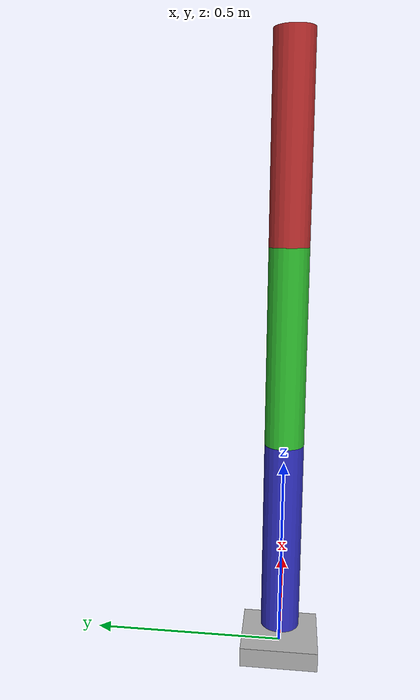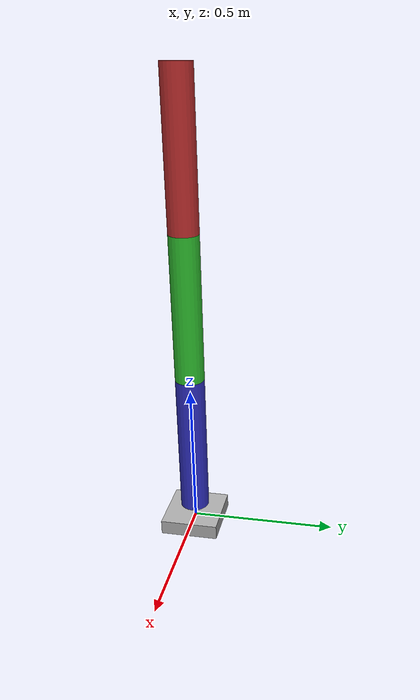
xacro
<?xml version="1.0"?>
<robot xmlns:xacro="http://ros.org/wiki/xacro" name="three_link_manipulator">

  <xacro:property name="pi" value="3.141592653589793"/>

  <!-- Dummy Root Link -->
  <link name="dummy_root"/>

  <!-- Fixed joint to base_link -->
  <joint name="fixed_base" type="fixed">
    <parent link="dummy_root"/>
    <child link="base_link"/>
    <origin xyz="0 0 0" rpy="0 0 0"/>
  </joint>

  <!-- Base Link -->
  <link name="base_link">
    <visual>
      <geometry>
        <box size="0.2 0.2 0.05"/>
      </geometry>
      <material name="gray">
        <color rgba="0.7 0.7 0.7 1.0"/>
      </material>
    </visual>
    <collision>
      <geometry>
        <box size="0.2 0.2 0.05"/>
      </geometry>
    </collision>
    <inertial>
      <mass value="1.0"/>
      <inertia ixx="0.01" iyy="0.01" izz="0.01"
               ixy="0.0" ixz="0.0" iyz="0.0"/>
    </inertial>
  </link>

  <!-- Joint 1 -->
  <joint name="joint1" type="revolute">
    <parent link="base_link"/>
    <child link="link1"/>
    <origin xyz="0 0 0.05" rpy="0 0 0"/>
    <axis xyz="0 0 1"/>
    <limit effort="5" velocity="1" lower="-${pi}" upper="${pi}"/>
  </joint>

  <!-- Link 1 -->
  <link name="link1">
    <visual>
      <origin xyz="0 0 0.25" rpy="0 0 0"/>
      <geometry>
        <cylinder length="0.5" radius="0.05"/>
      </geometry>
      <material name="blue">
        <color rgba="0.2 0.2 0.8 1.0"/>
      </material>
    </visual>
    <collision>
      <origin xyz="0 0 0.25" rpy="0 0 0"/>
      <geometry>
        <cylinder length="0.5" radius="0.05"/>
      </geometry>
    </collision>
    <inertial>
      <mass value="0.5"/>
      <inertia ixx="0.005" iyy="0.005" izz="0.005"
               ixy="0.0" ixz="0.0" iyz="0.0"/>
    </inertial>
  </link>

  <!-- Joint 2 -->
  <joint name="joint2" type="revolute">
    <parent link="link1"/>
    <child link="link2"/>
    <origin xyz="0 0 0.5" rpy="0 0 0"/>
    <axis xyz="0 0 1"/>
    <limit effort="5" velocity="1" lower="-${pi}" upper="${pi}"/>
  </joint>

  <!-- Link 2 -->
  <link name="link2">
    <visual>
      <origin xyz="0 0 0.25" rpy="0 0 0"/>
      <geometry>
        <cylinder length="0.5" radius="0.05"/>
      </geometry>
      <material name="green">
        <color rgba="0.2 0.8 0.2 1.0"/>
      </material>
    </visual>
    <collision>
      <origin xyz="0 0 0.25" rpy="0 0 0"/>
      <geometry>
        <cylinder length="0.5" radius="0.05"/>
      </geometry>
    </collision>
    <inertial>
      <mass value="0.5"/>
      <inertia ixx="0.005" iyy="0.005" izz="0.005"
               ixy="0.0" ixz="0.0" iyz="0.0"/>
    </inertial>
  </link>

  <!-- Joint 3 -->
  <joint name="joint3" type="revolute">
    <parent link="link2"/>
    <child link="link3"/>
    <origin xyz="0 0 0.5" rpy="0 0 0"/>
    <axis xyz="0 0 1"/>
    <limit effort="5" velocity="1" lower="-${pi}" upper="${pi}"/>
  </joint>

  <!-- Link 3 -->
  <link name="link3">
    <visual>
      <origin xyz="0 0 0.25" rpy="0 0 0"/>
      <geometry>
        <cylinder length="0.5" radius="0.05"/>
      </geometry>
      <material name="red">
        <color rgba="0.8 0.2 0.2 1.0"/>
      </material>
    </visual>
    <collision>
      <origin xyz="0 0 0.25" rpy="0 0 0"/>
      <geometry>
        <cylinder length="0.5" radius="0.05"/>
      </geometry>
    </collision>
    <inertial>
      <mass value="0.5"/>
      <inertia ixx="0.005" iyy="0.005" izz="0.005"
               ixy="0.0" ixz="0.0" iyz="0.0"/>
    </inertial>
  </link>

  <gazebo reference="link3">
    <gravity>false</gravity>
  </gazebo>

</robot>
